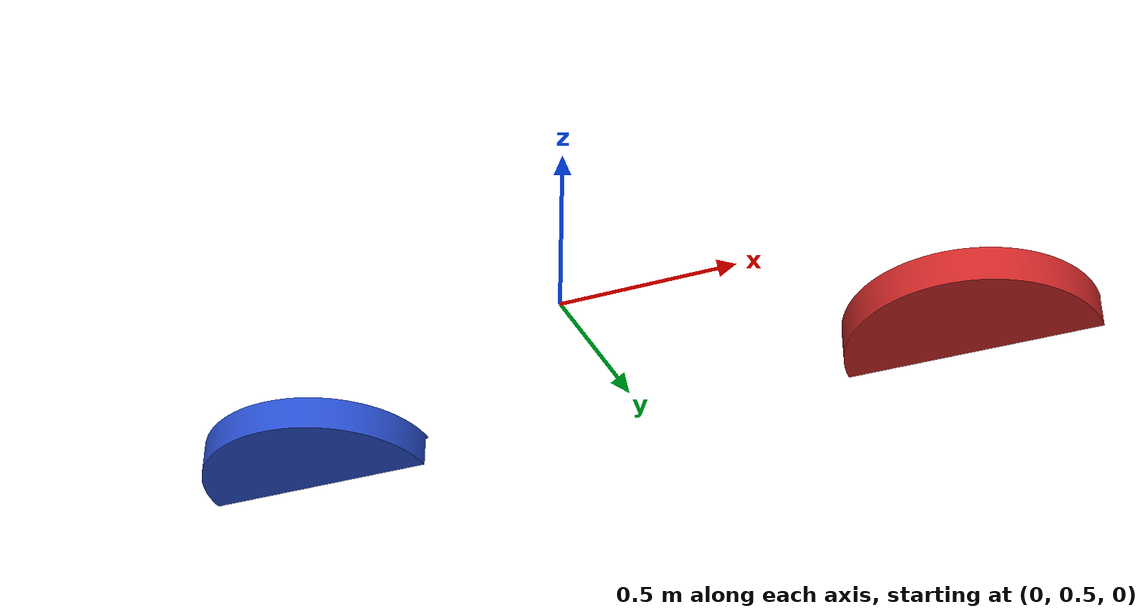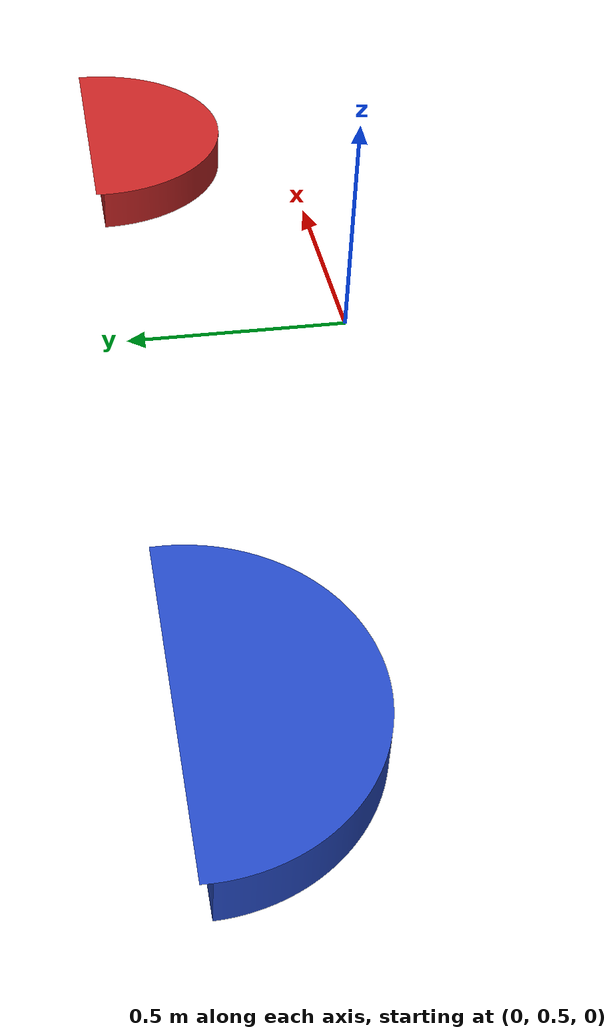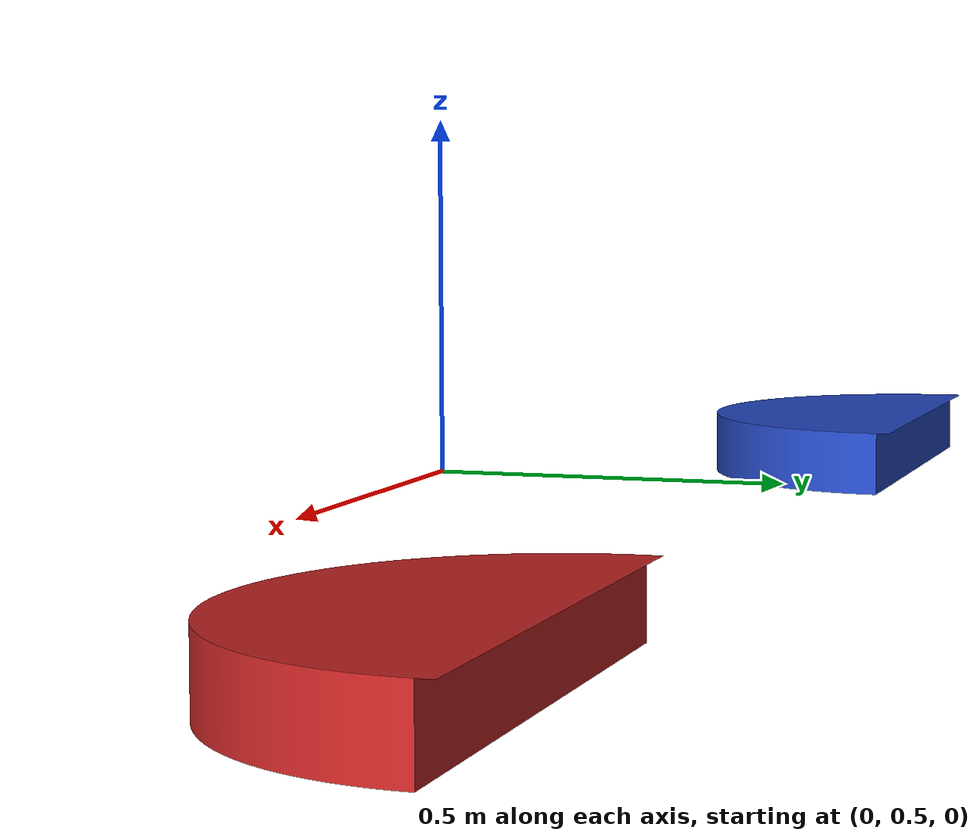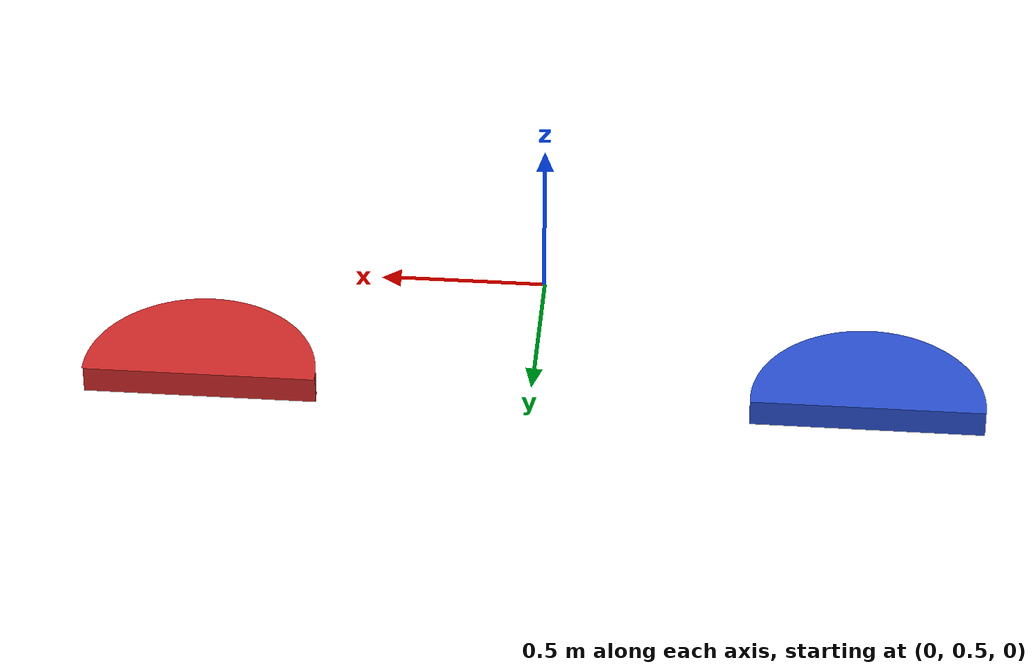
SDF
<?xml version='1.0'?>
<sdf version='1.6'>
  <model name='blue_half_cylinder'>
    <link name='link_7'>
      <inertial>
        <mass>1</mass>
        <inertia>
          <ixx>0.166667</ixx>
          <ixy>0</ixy>
          <ixz>0</ixz>
          <iyy>0.166667</iyy>
          <iyz>0</iyz>
          <izz>0.166667</izz>
        </inertia>
        <pose frame=''>0 0 0 0 -0 0</pose>
      </inertial>
      <pose frame=''>0 0 0 0 -0 0</pose>
      <gravity>1</gravity>
      <self_collide>0</self_collide>
      <kinematic>0</kinematic>
      <enable_wind>0</enable_wind>
      <visual name='visual'>
        <pose frame=''>0 0 0 0 -0 0</pose>
        <geometry>
          <mesh>
            <uri>model://red_half_cylinder.dae</uri>
            <scale>1 1 1</scale>
          </mesh>
        </geometry>
        <material>
          <lighting>1</lighting>
          <script>
            <uri>file://media/materials/scripts/gazebo.material</uri>
            <name>Gazebo/Red</name>
          </script>
          <shader type='vertex'>
            <normal_map>__default__</normal_map>
          </shader>
          <ambient>1 0 0 1</ambient>
          <diffuse>1 0 0 1</diffuse>
          <specular>0.1 0.1 0.1 1</specular>
          <emissive>0 0 0 1</emissive>
        </material>
        <transparency>0</transparency>
        <cast_shadows>1</cast_shadows>
      </visual>
      <collision name='collision'>
        <laser_retro>0</laser_retro>
        <max_contacts>10</max_contacts>
        <pose frame=''>0 0 0 0 -0 0</pose>
        <geometry>
          <mesh>
            <uri>model://red_half_cylinder.dae</uri>
            <scale>1 1 1</scale>
          </mesh>
        </geometry>
        <surface>
          <friction>
            <ode>
              <mu>1</mu>
              <mu2>1</mu2>
              <fdir1>0 0 0</fdir1>
              <slip1>0</slip1>
              <slip2>0</slip2>
            </ode>
            <torsional>
              <coefficient>1</coefficient>
              <patch_radius>0</patch_radius>
              <surface_radius>0</surface_radius>
              <use_patch_radius>1</use_patch_radius>
              <ode>
                <slip>0</slip>
              </ode>
            </torsional>
          </friction>
          <bounce>
            <restitution_coefficient>0</restitution_coefficient>
            <threshold>1e+06</threshold>
          </bounce>
          <contact>
            <collide_without_contact>0</collide_without_contact>
            <collide_without_contact_bitmask>1</collide_without_contact_bitmask>
            <collide_bitmask>1</collide_bitmask>
            <ode>
              <soft_cfm>0</soft_cfm>
              <soft_erp>0.2</soft_erp>
              <kp>1e+13</kp>
              <kd>1</kd>
              <max_vel>0.01</max_vel>
              <min_depth>0</min_depth>
            </ode>
            <bullet>
              <split_impulse>1</split_impulse>
              <split_impulse_penetration_threshold>-0.01</split_impulse_penetration_threshold>
              <soft_cfm>0</soft_cfm>
              <soft_erp>0.2</soft_erp>
              <kp>1e+13</kp>
              <kd>1</kd>
            </bullet>
          </contact>
        </surface>
      </collision>
    </link>
    <link name='link_8'>
      <inertial>
        <mass>1</mass>
        <inertia>
          <ixx>0.166667</ixx>
          <ixy>0</ixy>
          <ixz>0</ixz>
          <iyy>0.166667</iyy>
          <iyz>0</iyz>
          <izz>0.166667</izz>
        </inertia>
        <pose frame=''>0 0 0 0 -0 0</pose>
      </inertial>
      <pose frame=''>0 0 0 0 -0 0</pose>
      <gravity>1</gravity>
      <self_collide>0</self_collide>
      <kinematic>0</kinematic>
      <enable_wind>0</enable_wind>
      <visual name='visual'>
        <pose frame=''>0 0 0 0 -0 0</pose>
        <geometry>
          <mesh>
            <uri>model://blue_half_cylinder.dae</uri>
            <scale>1 1 1</scale>
          </mesh>
        </geometry>
        <material>
          <lighting>1</lighting>
          <script>
            <uri>file://media/materials/scripts/gazebo.material</uri>
            <name>Gazebo/Blue</name>
          </script>
          <shader type='vertex'>
            <normal_map>__default__</normal_map>
          </shader>
          <ambient>0 0 1 1</ambient>
          <diffuse>0 0 1 1</diffuse>
          <specular>0.1 0.1 0.1 1</specular>
          <emissive>0 0 0 1</emissive>
        </material>
        <transparency>0</transparency>
        <cast_shadows>1</cast_shadows>
      </visual>
      <collision name='collision'>
        <laser_retro>0</laser_retro>
        <max_contacts>10</max_contacts>
        <pose frame=''>0 0 0 0 -0 0</pose>
        <geometry>
          <mesh>
            <uri>model://blue_half_cylinder.dae</uri>
            <scale>1 1 1</scale>
          </mesh>
        </geometry>
        <surface>
          <friction>
            <ode>
              <mu>1</mu>
              <mu2>1</mu2>
              <fdir1>0 0 0</fdir1>
              <slip1>0</slip1>
              <slip2>0</slip2>
            </ode>
            <torsional>
              <coefficient>1</coefficient>
              <patch_radius>0</patch_radius>
              <surface_radius>0</surface_radius>
              <use_patch_radius>1</use_patch_radius>
              <ode>
                <slip>0</slip>
              </ode>
            </torsional>
          </friction>
          <bounce>
            <restitution_coefficient>0</restitution_coefficient>
            <threshold>1e+06</threshold>
          </bounce>
          <contact>
            <collide_without_contact>0</collide_without_contact>
            <collide_without_contact_bitmask>1</collide_without_contact_bitmask>
            <collide_bitmask>1</collide_bitmask>
            <ode>
              <soft_cfm>0</soft_cfm>
              <soft_erp>0.2</soft_erp>
              <kp>1e+13</kp>
              <kd>1</kd>
              <max_vel>0.01</max_vel>
              <min_depth>0</min_depth>
            </ode>
            <bullet>
              <split_impulse>1</split_impulse>
              <split_impulse_penetration_threshold>-0.01</split_impulse_penetration_threshold>
              <soft_cfm>0</soft_cfm>
              <soft_erp>0.2</soft_erp>
              <kp>1e+13</kp>
              <kd>1</kd>
            </bullet>
          </contact>
        </surface>
      </collision>
    </link>
    <static>0</static>
    <allow_auto_disable>1</allow_auto_disable>
  </model>
</sdf>
